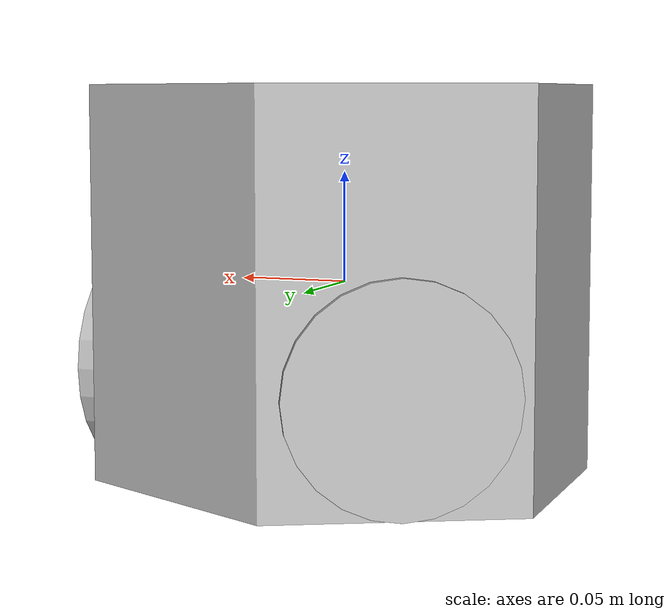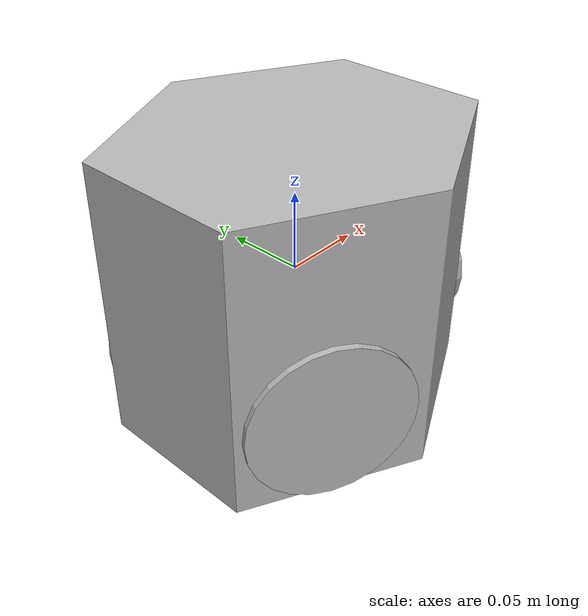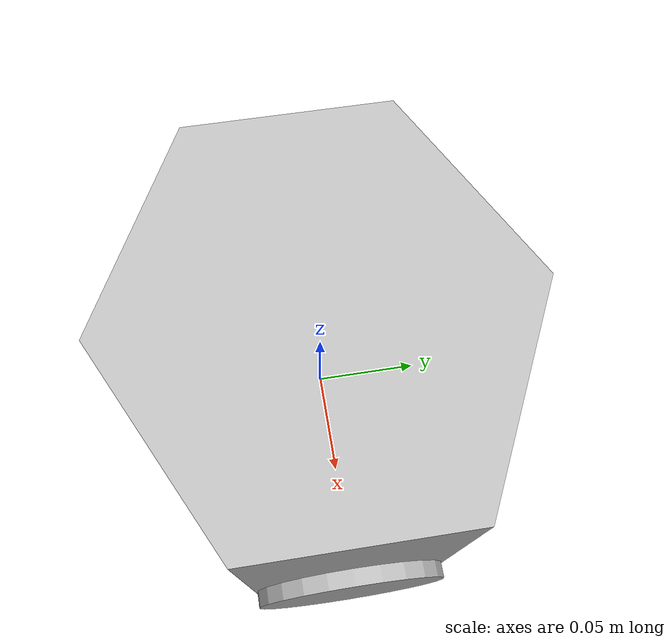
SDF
<?xml version='1.0'?>
<sdf version='1.4'>
  <model name="robot_soccer_00">

  <static>false</static>

    <link name='chassis'>
      <pose>0 0 0 0 0 0</pose>
      <collision name='collision'>
        <geometry>
          <mesh>
            <uri>./hex.dae</uri>
          </mesh>
        </geometry>
      </collision>

      <visual name='visual'>
        <geometry>
          <mesh>
            <uri>./hex.dae</uri>
          </mesh>
        </geometry>
      </visual>

    </link>

    <link name='right_wheel'>
      <pose>-.05 .07 -.038618 0 1.5707 -1.1</pose>
      <collision name="right_wheel_collision">
        <geometry>
          <cylinder>
            <radius>.05</radius>
            <length>.02</length>
          </cylinder>
        </geometry>
      </collision>
      <visual name="right_wheel_visual">
        <geometry>
          <cylinder>
            <radius>.05</radius>
            <length>.02</length>
          </cylinder>
        </geometry>
      </visual>
    </link>

    <link name='left_wheel'>
      <pose>-.05 -.07 -.038618 0 1.5707 1.1</pose>
      <collision name="left_wheel_collision">
        <geometry>
          <cylinder>
            <radius>.05</radius>
            <length>.02</length>
          </cylinder>
        </geometry>
      </collision>
      <visual name="left_wheel_visual">
        <geometry>
          <cylinder>
            <radius>.05</radius>
            <length>.02</length>
          </cylinder>
        </geometry>
      </visual>
    </link>

    <link name='back_wheel'>
      <pose>.1 0 -.038618 0 1.5707 0</pose>
      <collision name="back_wheel_collision">
        <geometry>
          <cylinder>
            <radius>.05</radius>
            <length>.02</length>
          </cylinder>
        </geometry>
      </collision>
      <visual name="back_wheel_visual">
        <geometry>
          <cylinder>
            <radius>.05</radius>
            <length>.02</length>
          </cylinder>
        </geometry>
      </visual>
    </link>

  <joint type="revolute2" name="left_wheel_hinge">
    <pose>-.05 -.07 -.038618 -1.1 1.5707 0</pose>
    <child>left_wheel</child>
    <parent>chassis</parent>
    <axis>
      <xyz>1 1 0</xyz>
    </axis>
  </joint>

  <joint type="revolute2" name="right_wheel_hinge">
    <pose>-.05 .07 -.038618 1.1 1.5707 0</pose>
    <child>right_wheel</child>
    <parent>chassis</parent>
    <axis>
      <xyz>1 1 0</xyz>
    </axis>
  </joint>

  <joint type="revolute2" name="back_wheel_hinge">
    <pose>.1 0 0 0 1.5707 0</pose>
    <child>back_wheel</child>
    <parent>chassis</parent>
    <axis>
      <xyz>1 1 0</xyz>
    </axis>
  </joint>

  </model>
</sdf>
